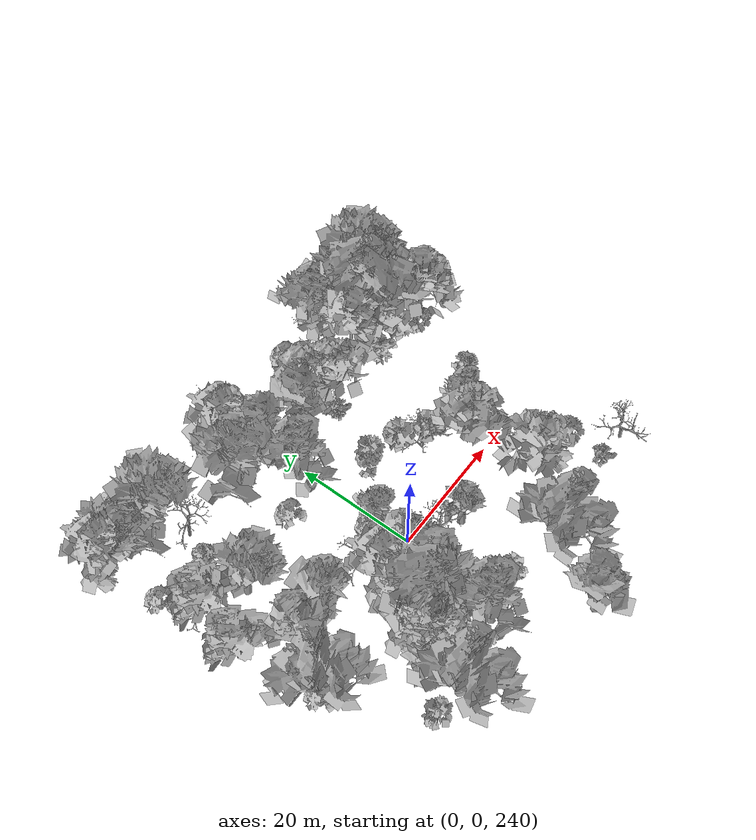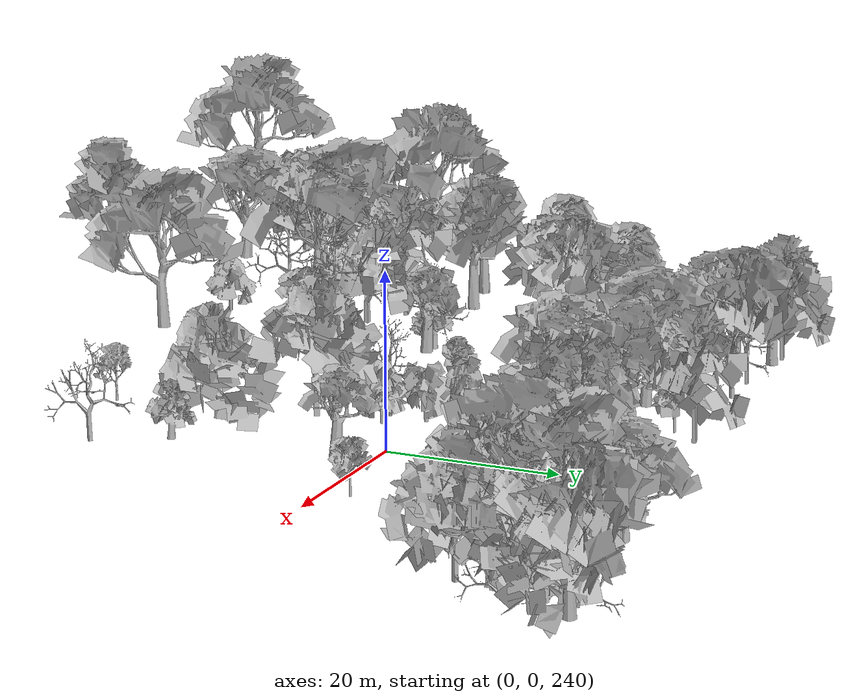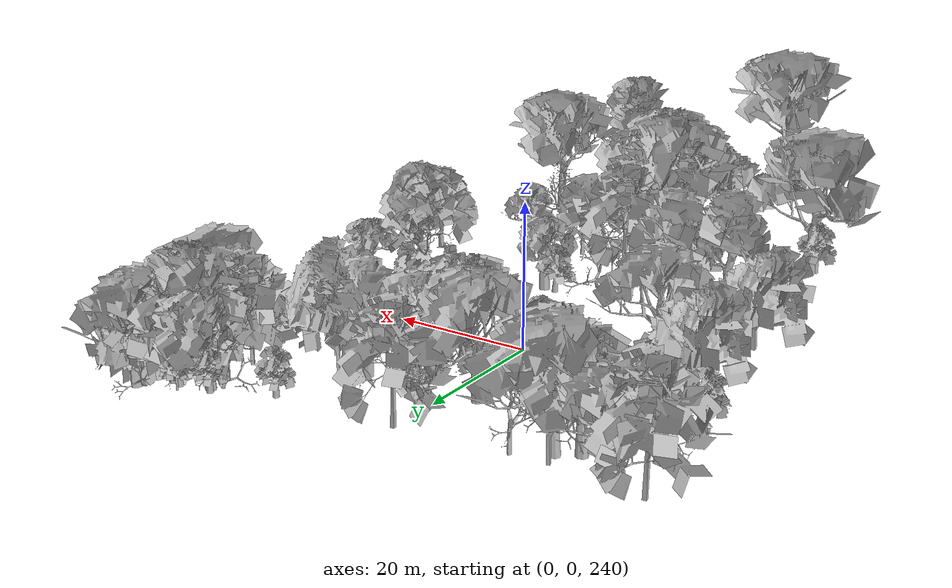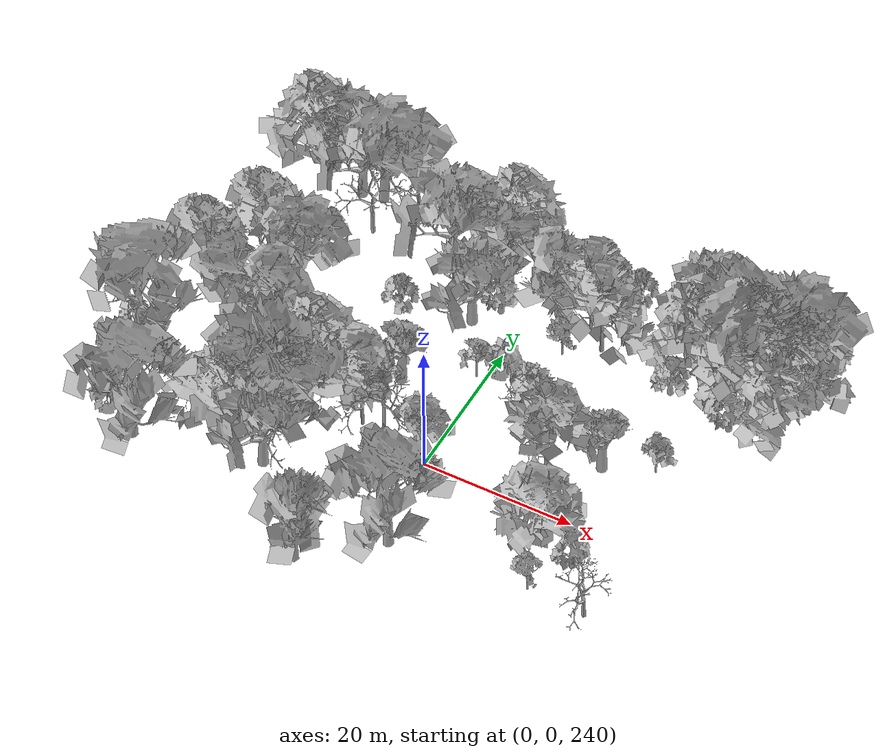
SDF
<sdf version="1.6">
 <world name="default">
  <light name="sun" type="directional">
   <pose>0 0 10 0 -0 0</pose>
   <diffuse>0.8 0.8 0.8 1</diffuse>
   <specular>0.2 0.2 0.2 1</specular>
   <attenuation>
    <range>1000</range>
    <constant>0.9</constant>
    <linear>0.01</linear>
    <quadratic>0.001</quadratic>
   </attenuation>
   <direction>-0.5 0.1 -0.9</direction>
  </light>
  <scene>
   <sky><clouds><speed>12</speed></clouds></sky>
   <ambient>0.4 0.4 0.4 1</ambient>
   <background>0.7 0.7 0.7 1</background>
   <shadows>1</shadows>
  </scene>
  <spherical_coordinates>
   <surface_model>EARTH_WGS84</surface_model>
   <latitude_deg>47.3977</latitude_deg>
   <longitude_deg>8.54559</longitude_deg>
   <elevation>0</elevation>
   <heading_deg>0</heading_deg>
  </spherical_coordinates>
  <physics name="default_physics" default="0" type="ode">
   <ode>
    <solver>
     <type>quick</type>
     <iters>100</iters>
     <sor>1.3</sor>
     <use_dynamic_moi_rescaling>0</use_dynamic_moi_rescaling>
    </solver>
    <constraints>
     <cfm>0</cfm>
     <erp>0.2</erp>
     <contact_max_correcting_vel>100</contact_max_correcting_vel>
     <contact_surface_layer>0.001</contact_surface_layer>
    </constraints>
   </ode>
   <max_step_size>0.002</max_step_size>
   <real_time_factor>1</real_time_factor>
   <real_time_update_rate>500</real_time_update_rate>
  </physics>
  <gravity>0 0 -9.8</gravity>
  <magnetic_field>6e-06 2.3e-05 -4.2e-05</magnetic_field>
  <atmosphere type="adiabatic"/>
  <model name="my_mesh0">
   <pose>28.4063 31.4954 240.777 0 -0 0.85452</pose>
   <static>1</static>
   <link name="body">
    <visual name="visual">
     <geometry><mesh><uri>model://trees/14.dae</uri><scale>1 1 1</scale></mesh></geometry>
    </visual>
    <collision name="collision">
     <geometry><mesh><uri>model://trees/14.dae</uri><scale>1 1 1</scale></mesh></geometry>
    </collision>
   </link>
  </model>
  <model name="my_mesh1">
   <pose>33.4438 31.0999 240.076 0 -0 0.182748</pose>
   <static>1</static>
   <link name="body">
    <visual name="visual">
     <geometry><mesh><uri>model://trees/16.dae</uri><scale>1 1 1</scale></mesh></geometry>
    </visual>
    <collision name="collision">
     <geometry><mesh><uri>model://trees/16.dae</uri><scale>1 1 1</scale></mesh></geometry>
    </collision>
   </link>
  </model>
  <model name="my_mesh2">
   <pose>27.3726 34.3492 240.263 0 -0 1.19378</pose>
   <static>1</static>
   <link name="body">
    <visual name="visual">
     <geometry><mesh><uri>model://trees/6.dae</uri><scale>1 1 1</scale></mesh></geometry>
    </visual>
    <collision name="collision">
     <geometry><mesh><uri>model://trees/6.dae</uri><scale>1 1 1</scale></mesh></geometry>
    </collision>
   </link>
  </model>
  <model name="my_mesh3">
   <pose>34.2484 33.8501 239.345 0 0 -1.26582</pose>
   <static>1</static>
   <link name="body">
    <visual name="visual">
     <geometry><mesh><uri>model://trees/15.dae</uri><scale>1 1 1</scale></mesh></geometry>
    </visual>
    <collision name="collision">
     <geometry><mesh><uri>model://trees/15.dae</uri><scale>1 1 1</scale></mesh></geometry>
    </collision>
   </link>
  </model>
  <model name="my_mesh4">
   <pose>34.6978 34.4709 238.994 0 0 -1.37986</pose>
   <static>1</static>
   <link name="body">
    <visual name="visual">
     <geometry><mesh><uri>model://trees/7.dae</uri><scale>1 1 1</scale></mesh></geometry>
    </visual>
    <collision name="collision">
     <geometry><mesh><uri>model://trees/7.dae</uri><scale>1 1 1</scale></mesh></geometry>
    </collision>
   </link>
  </model>
  <model name="my_mesh5">
   <pose>33.1142 34.6716 239.545 0 0 -0.380593</pose>
   <static>1</static>
   <link name="body">
    <visual name="visual">
     <geometry><mesh><uri>model://trees/18.dae</uri><scale>1 1 1</scale></mesh></geometry>
    </visual>
    <collision name="collision">
     <geometry><mesh><uri>model://trees/18.dae</uri><scale>1 1 1</scale></mesh></geometry>
    </collision>
   </link>
  </model>
  <model name="my_mesh6">
   <pose>33.6998 31.4376 239.796 0 0 -0.540894</pose>
   <static>1</static>
   <link name="body">
    <visual name="visual">
     <geometry><mesh><uri>model://trees/11.dae</uri><scale>1 1 1</scale></mesh></geometry>
    </visual>
    <collision name="collision">
     <geometry><mesh><uri>model://trees/11.dae</uri><scale>1 1 1</scale></mesh></geometry>
    </collision>
   </link>
  </model>
  <model name="my_mesh7">
   <pose>34.2173 34.1794 239.345 0 0 -1.09192</pose>
   <static>1</static>
   <link name="body">
    <visual name="visual">
     <geometry><mesh><uri>model://trees/2.dae</uri><scale>1 1 1</scale></mesh></geometry>
    </visual>
    <collision name="collision">
     <geometry><mesh><uri>model://trees/2.dae</uri><scale>1 1 1</scale></mesh></geometry>
    </collision>
   </link>
  </model>
  <model name="my_mesh8">
   <pose>29.8476 30.5218 240.854 0 0 -0.251351</pose>
   <static>1</static>
   <link name="body">
    <visual name="visual">
     <geometry><mesh><uri>model://trees/19.dae</uri><scale>1 1 1</scale></mesh></geometry>
    </visual>
    <collision name="collision">
     <geometry><mesh><uri>model://trees/19.dae</uri><scale>1 1 1</scale></mesh></geometry>
    </collision>
   </link>
  </model>
  <model name="my_mesh9">
   <pose>20.0603 33.6726 242.182 0 -0 1.56103</pose>
   <static>1</static>
   <link name="body">
    <visual name="visual">
     <geometry><mesh><uri>model://trees/18.dae</uri><scale>1 1 1</scale></mesh></geometry>
    </visual>
    <collision name="collision">
     <geometry><mesh><uri>model://trees/18.dae</uri><scale>1 1 1</scale></mesh></geometry>
    </collision>
   </link>
  </model>
  <model name="my_mesh10">
   <pose>34.2227 31.5013 239.796 0 -0 0.141431</pose>
   <static>1</static>
   <link name="body">
    <visual name="visual">
     <geometry><mesh><uri>model://trees/2.dae</uri><scale>1 1 1</scale></mesh></geometry>
    </visual>
    <collision name="collision">
     <geometry><mesh><uri>model://trees/2.dae</uri><scale>1 1 1</scale></mesh></geometry>
    </collision>
   </link>
  </model>
  <model name="my_mesh11">
   <pose>22.1633 21.7237 243.351 0 -0 0.78602</pose>
   <static>1</static>
   <link name="body">
    <visual name="visual">
     <geometry><mesh><uri>model://trees/1.dae</uri><scale>1 1 1</scale></mesh></geometry>
    </visual>
    <collision name="collision">
     <geometry><mesh><uri>model://trees/1.dae</uri><scale>1 1 1</scale></mesh></geometry>
    </collision>
   </link>
  </model>
  <model name="my_mesh12">
   <pose>31.0915 24.4947 241.553 0 -0 1.32994</pose>
   <static>1</static>
   <link name="body">
    <visual name="visual">
     <geometry><mesh><uri>model://trees/15.dae</uri><scale>1 1 1</scale></mesh></geometry>
    </visual>
    <collision name="collision">
     <geometry><mesh><uri>model://trees/15.dae</uri><scale>1 1 1</scale></mesh></geometry>
    </collision>
   </link>
  </model>
  <model name="my_mesh13">
   <pose>34.2431 26.3789 240.62 0 -0 0.91038</pose>
   <static>1</static>
   <link name="body">
    <visual name="visual">
     <geometry><mesh><uri>model://trees/16.dae</uri><scale>1 1 1</scale></mesh></geometry>
    </visual>
    <collision name="collision">
     <geometry><mesh><uri>model://trees/16.dae</uri><scale>1 1 1</scale></mesh></geometry>
    </collision>
   </link>
  </model>
  <model name="my_mesh14">
   <pose>33.8653 29.8797 240.076 0 -0 0.647622</pose>
   <static>1</static>
   <link name="body">
    <visual name="visual">
     <geometry><mesh><uri>model://trees/12.dae</uri><scale>1 1 1</scale></mesh></geometry>
    </visual>
    <collision name="collision">
     <geometry><mesh><uri>model://trees/12.dae</uri><scale>1 1 1</scale></mesh></geometry>
    </collision>
   </link>
  </model>
  <model name="my_mesh15">
   <pose>33.6249 31.3962 240.076 0 -0 1.23071</pose>
   <static>1</static>
   <link name="body">
    <visual name="visual">
     <geometry><mesh><uri>model://trees/5.dae</uri><scale>1 1 1</scale></mesh></geometry>
    </visual>
    <collision name="collision">
     <geometry><mesh><uri>model://trees/5.dae</uri><scale>1 1 1</scale></mesh></geometry>
    </collision>
   </link>
  </model>
  <model name="my_mesh16">
   <pose>32.7919 34.2264 239.792 0 0 -1.00451</pose>
   <static>1</static>
   <link name="body">
    <visual name="visual">
     <geometry><mesh><uri>model://trees/9.dae</uri><scale>1 1 1</scale></mesh></geometry>
    </visual>
    <collision name="collision">
     <geometry><mesh><uri>model://trees/9.dae</uri><scale>1 1 1</scale></mesh></geometry>
    </collision>
   </link>
  </model>
  <model name="my_mesh17">
   <pose>21.7544 34.0387 241.706 0 -0 0.278877</pose>
   <static>1</static>
   <link name="body">
    <visual name="visual">
     <geometry><mesh><uri>model://trees/8.dae</uri><scale>1 1 1</scale></mesh></geometry>
    </visual>
    <collision name="collision">
     <geometry><mesh><uri>model://trees/8.dae</uri><scale>1 1 1</scale></mesh></geometry>
    </collision>
   </link>
  </model>
  <model name="my_mesh18">
   <pose>29.2987 32.9867 240.511 0 0 -1.33424</pose>
   <static>1</static>
   <link name="body">
    <visual name="visual">
     <geometry><mesh><uri>model://trees/8.dae</uri><scale>1 1 1</scale></mesh></geometry>
    </visual>
    <collision name="collision">
     <geometry><mesh><uri>model://trees/8.dae</uri><scale>1 1 1</scale></mesh></geometry>
    </collision>
   </link>
  </model>
  <model name="my_mesh19">
   <pose>28.3888 31.9209 240.641 0 -0 1.41085</pose>
   <static>1</static>
   <link name="body">
    <visual name="visual">
     <geometry><mesh><uri>model://trees/11.dae</uri><scale>1 1 1</scale></mesh></geometry>
    </visual>
    <collision name="collision">
     <geometry><mesh><uri>model://trees/11.dae</uri><scale>1 1 1</scale></mesh></geometry>
    </collision>
   </link>
  </model>
  <model name="my_mesh20">
   <pose>21.016 34.8194 241.808 0 -0 0.154832</pose>
   <static>1</static>
   <link name="body">
    <visual name="visual">
     <geometry><mesh><uri>model://trees/1.dae</uri><scale>1 1 1</scale></mesh></geometry>
    </visual>
    <collision name="collision">
     <geometry><mesh><uri>model://trees/1.dae</uri><scale>1 1 1</scale></mesh></geometry>
    </collision>
   </link>
  </model>
  <model name="my_mesh21">
   <pose>21.7245 27.2855 242.484 0 0 -0.204462</pose>
   <static>1</static>
   <link name="body">
    <visual name="visual">
     <geometry><mesh><uri>model://trees/15.dae</uri><scale>1 1 1</scale></mesh></geometry>
    </visual>
    <collision name="collision">
     <geometry><mesh><uri>model://trees/15.dae</uri><scale>1 1 1</scale></mesh></geometry>
    </collision>
   </link>
  </model>
  <model name="my_mesh22">
   <pose>34.9501 33.7908 239.056 0 -0 1.01924</pose>
   <static>1</static>
   <link name="body">
    <visual name="visual">
     <geometry><mesh><uri>model://trees/13.dae</uri><scale>1 1 1</scale></mesh></geometry>
    </visual>
    <collision name="collision">
     <geometry><mesh><uri>model://trees/13.dae</uri><scale>1 1 1</scale></mesh></geometry>
    </collision>
   </link>
  </model>
  <model name="my_mesh23">
   <pose>32.4407 31.9594 240.085 0 -0 1.33412</pose>
   <static>1</static>
   <link name="body">
    <visual name="visual">
     <geometry><mesh><uri>model://trees/12.dae</uri><scale>1 1 1</scale></mesh></geometry>
    </visual>
    <collision name="collision">
     <geometry><mesh><uri>model://trees/12.dae</uri><scale>1 1 1</scale></mesh></geometry>
    </collision>
   </link>
  </model>
  <model name="my_mesh24">
   <pose>30.5975 20.7878 242.141 0 0 -1.47337</pose>
   <static>1</static>
   <link name="body">
    <visual name="visual">
     <geometry><mesh><uri>model://trees/0.dae</uri><scale>1 1 1</scale></mesh></geometry>
    </visual>
    <collision name="collision">
     <geometry><mesh><uri>model://trees/0.dae</uri><scale>1 1 1</scale></mesh></geometry>
    </collision>
   </link>
  </model>
  <model name="my_mesh25">
   <pose>26.8716 30.8943 240.81 0 -0 0.018159</pose>
   <static>1</static>
   <link name="body">
    <visual name="visual">
     <geometry><mesh><uri>model://trees/10.dae</uri><scale>1 1 1</scale></mesh></geometry>
    </visual>
    <collision name="collision">
     <geometry><mesh><uri>model://trees/10.dae</uri><scale>1 1 1</scale></mesh></geometry>
    </collision>
   </link>
  </model>
  <model name="my_mesh26">
   <pose>27.7847 33.4876 240.401 0 0 -0.929705</pose>
   <static>1</static>
   <link name="body">
    <visual name="visual">
     <geometry><mesh><uri>model://trees/1.dae</uri><scale>1 1 1</scale></mesh></geometry>
    </visual>
    <collision name="collision">
     <geometry><mesh><uri>model://trees/1.dae</uri><scale>1 1 1</scale></mesh></geometry>
    </collision>
   </link>
  </model>
  <model name="my_mesh27">
   <pose>31.2467 29.2039 240.887 0 0 -0.26303</pose>
   <static>1</static>
   <link name="body">
    <visual name="visual">
     <geometry><mesh><uri>model://trees/11.dae</uri><scale>1 1 1</scale></mesh></geometry>
    </visual>
    <collision name="collision">
     <geometry><mesh><uri>model://trees/11.dae</uri><scale>1 1 1</scale></mesh></geometry>
    </collision>
   </link>
  </model>
  <model name="my_mesh28">
   <pose>34.6202 23.2575 240.789 0 -0 0.287575</pose>
   <static>1</static>
   <link name="body">
    <visual name="visual">
     <geometry><mesh><uri>model://trees/15.dae</uri><scale>1 1 1</scale></mesh></geometry>
    </visual>
    <collision name="collision">
     <geometry><mesh><uri>model://trees/15.dae</uri><scale>1 1 1</scale></mesh></geometry>
    </collision>
   </link>
  </model>
  <model name="my_mesh29">
   <pose>33.7497 33.1949 239.421 0 0 -1.26001</pose>
   <static>1</static>
   <link name="body">
    <visual name="visual">
     <geometry><mesh><uri>model://trees/2.dae</uri><scale>1 1 1</scale></mesh></geometry>
    </visual>
    <collision name="collision">
     <geometry><mesh><uri>model://trees/2.dae</uri><scale>1 1 1</scale></mesh></geometry>
    </collision>
   </link>
  </model>
  <model name="my_mesh30">
   <pose>30.2527 29.3366 240.994 0 -0 1.34532</pose>
   <static>1</static>
   <link name="body">
    <visual name="visual">
     <geometry><mesh><uri>model://trees/15.dae</uri><scale>1 1 1</scale></mesh></geometry>
    </visual>
    <collision name="collision">
     <geometry><mesh><uri>model://trees/15.dae</uri><scale>1 1 1</scale></mesh></geometry>
    </collision>
   </link>
  </model>
  <model name="my_mesh31">
   <pose>27.9165 31.1298 240.754 0 -0 1.22861</pose>
   <static>1</static>
   <link name="body">
    <visual name="visual">
     <geometry><mesh><uri>model://trees/3.dae</uri><scale>1 1 1</scale></mesh></geometry>
    </visual>
    <collision name="collision">
     <geometry><mesh><uri>model://trees/3.dae</uri><scale>1 1 1</scale></mesh></geometry>
    </collision>
   </link>
  </model>
  <model name="my_mesh32">
   <pose>28.1479 26.4625 241.668 0 -0 1.51943</pose>
   <static>1</static>
   <link name="body">
    <visual name="visual">
     <geometry><mesh><uri>model://trees/10.dae</uri><scale>1 1 1</scale></mesh></geometry>
    </visual>
    <collision name="collision">
     <geometry><mesh><uri>model://trees/10.dae</uri><scale>1 1 1</scale></mesh></geometry>
    </collision>
   </link>
  </model>
  <model name="my_mesh33">
   <pose>2.14748 9.19942 248.202 0 0 -0.267345</pose>
   <static>1</static>
   <link name="body">
    <visual name="visual">
     <geometry><mesh><uri>model://trees/6.dae</uri><scale>1 1 1</scale></mesh></geometry>
    </visual>
    <collision name="collision">
     <geometry><mesh><uri>model://trees/6.dae</uri><scale>1 1 1</scale></mesh></geometry>
    </collision>
   </link>
  </model>
  <model name="my_mesh34">
   <pose>-11.1389 14.3292 248.001 0 -0 0.165701</pose>
   <static>1</static>
   <link name="body">
    <visual name="visual">
     <geometry><mesh><uri>model://trees/0.dae</uri><scale>1 1 1</scale></mesh></geometry>
    </visual>
    <collision name="collision">
     <geometry><mesh><uri>model://trees/0.dae</uri><scale>1 1 1</scale></mesh></geometry>
    </collision>
   </link>
  </model>
  <model name="my_mesh35">
   <pose>13.5023 5.95465 247.759 0 0 -1.11029</pose>
   <static>1</static>
   <link name="body">
    <visual name="visual">
     <geometry><mesh><uri>model://trees/5.dae</uri><scale>1 1 1</scale></mesh></geometry>
    </visual>
    <collision name="collision">
     <geometry><mesh><uri>model://trees/5.dae</uri><scale>1 1 1</scale></mesh></geometry>
    </collision>
   </link>
  </model>
  <model name="my_mesh36">
   <pose>-33.1716 6.80118 250.188 0 -0 0.808644</pose>
   <static>1</static>
   <link name="body">
    <visual name="visual">
     <geometry><mesh><uri>model://trees/13.dae</uri><scale>1 1 1</scale></mesh></geometry>
    </visual>
    <collision name="collision">
     <geometry><mesh><uri>model://trees/13.dae</uri><scale>1 1 1</scale></mesh></geometry>
    </collision>
   </link>
  </model>
  <model name="my_mesh37">
   <pose>-26.6062 18.4268 247.735 0 0 -0.08103</pose>
   <static>1</static>
   <link name="body">
    <visual name="visual">
     <geometry><mesh><uri>model://trees/5.dae</uri><scale>1 1 1</scale></mesh></geometry>
    </visual>
    <collision name="collision">
     <geometry><mesh><uri>model://trees/5.dae</uri><scale>1 1 1</scale></mesh></geometry>
    </collision>
   </link>
  </model>
  <model name="my_mesh38">
   <pose>-10.5501 -13.3833 253.808 0 -0 0.827635</pose>
   <static>1</static>
   <link name="body">
    <visual name="visual">
     <geometry><mesh><uri>model://trees/9.dae</uri><scale>1 1 1</scale></mesh></geometry>
    </visual>
    <collision name="collision">
     <geometry><mesh><uri>model://trees/9.dae</uri><scale>1 1 1</scale></mesh></geometry>
    </collision>
   </link>
  </model>
  <model name="my_mesh39">
   <pose>-21.0307 1.20442 250.999 0 0 -1.47679</pose>
   <static>1</static>
   <link name="body">
    <visual name="visual">
     <geometry><mesh><uri>model://trees/11.dae</uri><scale>1 1 1</scale></mesh></geometry>
    </visual>
    <collision name="collision">
     <geometry><mesh><uri>model://trees/11.dae</uri><scale>1 1 1</scale></mesh></geometry>
    </collision>
   </link>
  </model>
  <model name="my_mesh40">
   <pose>-25.6845 30.8136 245.774 0 0 -0.058622</pose>
   <static>1</static>
   <link name="body">
    <visual name="visual">
     <geometry><mesh><uri>model://trees/8.dae</uri><scale>1 1 1</scale></mesh></geometry>
    </visual>
    <collision name="collision">
     <geometry><mesh><uri>model://trees/8.dae</uri><scale>1 1 1</scale></mesh></geometry>
    </collision>
   </link>
  </model>
  <model name="my_mesh41">
   <pose>12.0357 22.9267 244.503 0 -0 1.52125</pose>
   <static>1</static>
   <link name="body">
    <visual name="visual">
     <geometry><mesh><uri>model://trees/15.dae</uri><scale>1 1 1</scale></mesh></geometry>
    </visual>
    <collision name="collision">
     <geometry><mesh><uri>model://trees/15.dae</uri><scale>1 1 1</scale></mesh></geometry>
    </collision>
   </link>
  </model>
  <model name="my_mesh42">
   <pose>-33.8153 33.9445 245.307 0 0 -0.663713</pose>
   <static>1</static>
   <link name="body">
    <visual name="visual">
     <geometry><mesh><uri>model://trees/15.dae</uri><scale>1 1 1</scale></mesh></geometry>
    </visual>
    <collision name="collision">
     <geometry><mesh><uri>model://trees/15.dae</uri><scale>1 1 1</scale></mesh></geometry>
    </collision>
   </link>
  </model>
  <model name="my_mesh43">
   <pose>-6.2379 2.89268 250.239 0 -0 0.347638</pose>
   <static>1</static>
   <link name="body">
    <visual name="visual">
     <geometry><mesh><uri>model://trees/1.dae</uri><scale>1 1 1</scale></mesh></geometry>
    </visual>
    <collision name="collision">
     <geometry><mesh><uri>model://trees/1.dae</uri><scale>1 1 1</scale></mesh></geometry>
    </collision>
   </link>
  </model>
  <model name="my_mesh44">
   <pose>16.5476 0.121368 248.723 0 0 -0.242676</pose>
   <static>1</static>
   <link name="body">
    <visual name="visual">
     <geometry><mesh><uri>model://trees/14.dae</uri><scale>1 1 1</scale></mesh></geometry>
    </visual>
    <collision name="collision">
     <geometry><mesh><uri>model://trees/14.dae</uri><scale>1 1 1</scale></mesh></geometry>
    </collision>
   </link>
  </model>
  <model name="my_mesh45">
   <pose>9.03762 25.9351 244.235 0 -0 1.43379</pose>
   <static>1</static>
   <link name="body">
    <visual name="visual">
     <geometry><mesh><uri>model://trees/15.dae</uri><scale>1 1 1</scale></mesh></geometry>
    </visual>
    <collision name="collision">
     <geometry><mesh><uri>model://trees/15.dae</uri><scale>1 1 1</scale></mesh></geometry>
    </collision>
   </link>
  </model>
  <model name="my_mesh46">
   <pose>-2.83377 26.7954 244.598 0 0 -0.464357</pose>
   <static>1</static>
   <link name="body">
    <visual name="visual">
     <geometry><mesh><uri>model://trees/11.dae</uri><scale>1 1 1</scale></mesh></geometry>
    </visual>
    <collision name="collision">
     <geometry><mesh><uri>model://trees/11.dae</uri><scale>1 1 1</scale></mesh></geometry>
    </collision>
   </link>
  </model>
  <model name="my_mesh47">
   <pose>-21.3435 25.7196 245.878 0 0 -0.981016</pose>
   <static>1</static>
   <link name="body">
    <visual name="visual">
     <geometry><mesh><uri>model://trees/16.dae</uri><scale>1 1 1</scale></mesh></geometry>
    </visual>
    <collision name="collision">
     <geometry><mesh><uri>model://trees/16.dae</uri><scale>1 1 1</scale></mesh></geometry>
    </collision>
   </link>
  </model>
  <model name="my_mesh48">
   <pose>-31.4001 15.5914 248.447 0 -0 0.734686</pose>
   <static>1</static>
   <link name="body">
    <visual name="visual">
     <geometry><mesh><uri>model://trees/19.dae</uri><scale>1 1 1</scale></mesh></geometry>
    </visual>
    <collision name="collision">
     <geometry><mesh><uri>model://trees/19.dae</uri><scale>1 1 1</scale></mesh></geometry>
    </collision>
   </link>
  </model>
  <model name="my_mesh49">
   <pose>12.1011 33.1217 242.923 0 -0 0.136228</pose>
   <static>1</static>
   <link name="body">
    <visual name="visual">
     <geometry><mesh><uri>model://trees/1.dae</uri><scale>1 1 1</scale></mesh></geometry>
    </visual>
    <collision name="collision">
     <geometry><mesh><uri>model://trees/1.dae</uri><scale>1 1 1</scale></mesh></geometry>
    </collision>
   </link>
  </model>
  <model name="my_mesh50">
   <pose>-30.1493 16.0569 248.236 0 -0 1.01185</pose>
   <static>1</static>
   <link name="body">
    <visual name="visual">
     <geometry><mesh><uri>model://trees/13.dae</uri><scale>1 1 1</scale></mesh></geometry>
    </visual>
    <collision name="collision">
     <geometry><mesh><uri>model://trees/13.dae</uri><scale>1 1 1</scale></mesh></geometry>
    </collision>
   </link>
  </model>
  <model name="my_mesh51">
   <pose>-31.0323 33.5886 245.456 0 0 -1.55465</pose>
   <static>1</static>
   <link name="body">
    <visual name="visual">
     <geometry><mesh><uri>model://trees/8.dae</uri><scale>1 1 1</scale></mesh></geometry>
    </visual>
    <collision name="collision">
     <geometry><mesh><uri>model://trees/8.dae</uri><scale>1 1 1</scale></mesh></geometry>
    </collision>
   </link>
  </model>
  <model name="my_mesh52">
   <pose>-18.1971 -18.4995 256.614 0 0 -1.54509</pose>
   <static>1</static>
   <link name="body">
    <visual name="visual">
     <geometry><mesh><uri>model://trees/13.dae</uri><scale>1 1 1</scale></mesh></geometry>
    </visual>
    <collision name="collision">
     <geometry><mesh><uri>model://trees/13.dae</uri><scale>1 1 1</scale></mesh></geometry>
    </collision>
   </link>
  </model>
  <model name="my_mesh53">
   <pose>-27.3611 -0.126 251.284 0 -0 1.19626</pose>
   <static>1</static>
   <link name="body">
    <visual name="visual">
     <geometry><mesh><uri>model://trees/11.dae</uri><scale>1 1 1</scale></mesh></geometry>
    </visual>
    <collision name="collision">
     <geometry><mesh><uri>model://trees/11.dae</uri><scale>1 1 1</scale></mesh></geometry>
    </collision>
   </link>
  </model>
  <model name="my_mesh54">
   <pose>-1.73437 -6.85038 251.897 0 -0 1.32214</pose>
   <static>1</static>
   <link name="body">
    <visual name="visual">
     <geometry><mesh><uri>model://trees/16.dae</uri><scale>1 1 1</scale></mesh></geometry>
    </visual>
    <collision name="collision">
     <geometry><mesh><uri>model://trees/16.dae</uri><scale>1 1 1</scale></mesh></geometry>
    </collision>
   </link>
  </model>
  <model name="my_mesh55">
   <pose>21.6057 4.74347 246.376 0 -0 0.425033</pose>
   <static>1</static>
   <link name="body">
    <visual name="visual">
     <geometry><mesh><uri>model://trees/7.dae</uri><scale>1 1 1</scale></mesh></geometry>
    </visual>
    <collision name="collision">
     <geometry><mesh><uri>model://trees/7.dae</uri><scale>1 1 1</scale></mesh></geometry>
    </collision>
   </link>
  </model>
  <model name="my_mesh56">
   <pose>-23.0745 31.572 245.397 0 0 -0.76755</pose>
   <static>1</static>
   <link name="body">
    <visual name="visual">
     <geometry><mesh><uri>model://trees/9.dae</uri><scale>1 1 1</scale></mesh></geometry>
    </visual>
    <collision name="collision">
     <geometry><mesh><uri>model://trees/9.dae</uri><scale>1 1 1</scale></mesh></geometry>
    </collision>
   </link>
  </model>
  <model name="my_mesh57">
   <pose>-4.68579 33.1345 243.847 0 0 -0.726556</pose>
   <static>1</static>
   <link name="body">
    <visual name="visual">
     <geometry><mesh><uri>model://trees/15.dae</uri><scale>1 1 1</scale></mesh></geometry>
    </visual>
    <collision name="collision">
     <geometry><mesh><uri>model://trees/15.dae</uri><scale>1 1 1</scale></mesh></geometry>
    </collision>
   </link>
  </model>
  <model name="my_mesh58">
   <pose>-24.5 12.005 249.141 0 0 -1.27851</pose>
   <static>1</static>
   <link name="body">
    <visual name="visual">
     <geometry><mesh><uri>model://trees/8.dae</uri><scale>1 1 1</scale></mesh></geometry>
    </visual>
    <collision name="collision">
     <geometry><mesh><uri>model://trees/8.dae</uri><scale>1 1 1</scale></mesh></geometry>
    </collision>
   </link>
  </model>
  <model name="my_mesh59">
   <pose>-4.52609 -6.97949 252.146 0 0 -0.008645</pose>
   <static>1</static>
   <link name="body">
    <visual name="visual">
     <geometry><mesh><uri>model://trees/17.dae</uri><scale>1 1 1</scale></mesh></geometry>
    </visual>
    <collision name="collision">
     <geometry><mesh><uri>model://trees/17.dae</uri><scale>1 1 1</scale></mesh></geometry>
    </collision>
   </link>
  </model>
  <model name="my_mesh60">
   <pose>27.8222 22.5097 242.201 0 -0 0.444687</pose>
   <static>1</static>
   <link name="body">
    <visual name="visual">
     <geometry><mesh><uri>model://trees/5.dae</uri><scale>1 1 1</scale></mesh></geometry>
    </visual>
    <collision name="collision">
     <geometry><mesh><uri>model://trees/5.dae</uri><scale>1 1 1</scale></mesh></geometry>
    </collision>
   </link>
  </model>
  <model name="my_mesh61">
   <pose>-33.879 21.2807 247.333 0 0 -0.258704</pose>
   <static>1</static>
   <link name="body">
    <visual name="visual">
     <geometry><mesh><uri>model://trees/0.dae</uri><scale>1 1 1</scale></mesh></geometry>
    </visual>
    <collision name="collision">
     <geometry><mesh><uri>model://trees/0.dae</uri><scale>1 1 1</scale></mesh></geometry>
    </collision>
   </link>
  </model>
  <model name="my_mesh62">
   <pose>-23.3073 33.0005 245.163 0 -0 1.00053</pose>
   <static>1</static>
   <link name="body">
    <visual name="visual">
     <geometry><mesh><uri>model://trees/17.dae</uri><scale>1 1 1</scale></mesh></geometry>
    </visual>
    <collision name="collision">
     <geometry><mesh><uri>model://trees/17.dae</uri><scale>1 1 1</scale></mesh></geometry>
    </collision>
   </link>
  </model>
  <model name="my_mesh63">
   <pose>-33.8727 -8.99096 254.634 0 -0 0.891456</pose>
   <static>1</static>
   <link name="body">
    <visual name="visual">
     <geometry><mesh><uri>model://trees/10.dae</uri><scale>1 1 1</scale></mesh></geometry>
    </visual>
    <collision name="collision">
     <geometry><mesh><uri>model://trees/10.dae</uri><scale>1 1 1</scale></mesh></geometry>
    </collision>
   </link>
  </model>
  <model name="my_mesh64">
   <pose>23.9684 -18.6405 250.087 0 -0 0.989653</pose>
   <static>1</static>
   <link name="body">
    <visual name="visual">
     <geometry><mesh><uri>model://trees/3.dae</uri><scale>1 1 1</scale></mesh></geometry>
    </visual>
    <collision name="collision">
     <geometry><mesh><uri>model://trees/3.dae</uri><scale>1 1 1</scale></mesh></geometry>
    </collision>
   </link>
  </model>
  <model name="my_mesh65">
   <pose>-12.4056 -3.29654 251.851 0 0 -0.65909</pose>
   <static>1</static>
   <link name="body">
    <visual name="visual">
     <geometry><mesh><uri>model://trees/15.dae</uri><scale>1 1 1</scale></mesh></geometry>
    </visual>
    <collision name="collision">
     <geometry><mesh><uri>model://trees/15.dae</uri><scale>1 1 1</scale></mesh></geometry>
    </collision>
   </link>
  </model>
  <model name="my_mesh66">
   <pose>-23.8211 -27.6764 260.709 0 -0 0.39387</pose>
   <static>1</static>
   <link name="body">
    <visual name="visual">
     <geometry><mesh><uri>model://trees/10.dae</uri><scale>1 1 1</scale></mesh></geometry>
    </visual>
    <collision name="collision">
     <geometry><mesh><uri>model://trees/10.dae</uri><scale>1 1 1</scale></mesh></geometry>
    </collision>
   </link>
  </model>
  <model name="my_mesh67">
   <pose>-28.0622 -25.3475 260.176 0 0 -0.222888</pose>
   <static>1</static>
   <link name="body">
    <visual name="visual">
     <geometry><mesh><uri>model://trees/4.dae</uri><scale>1 1 1</scale></mesh></geometry>
    </visual>
    <collision name="collision">
     <geometry><mesh><uri>model://trees/4.dae</uri><scale>1 1 1</scale></mesh></geometry>
    </collision>
   </link>
  </model>
  <model name="my_mesh68">
   <pose>-24.6103 20.4013 247.172 0 -0 1.17873</pose>
   <static>1</static>
   <link name="body">
    <visual name="visual">
     <geometry><mesh><uri>model://trees/2.dae</uri><scale>1 1 1</scale></mesh></geometry>
    </visual>
    <collision name="collision">
     <geometry><mesh><uri>model://trees/2.dae</uri><scale>1 1 1</scale></mesh></geometry>
    </collision>
   </link>
  </model>
  <model name="my_mesh69">
   <pose>-7.35172 -5.67327 251.982 0 0 -0.862382</pose>
   <static>1</static>
   <link name="body">
    <visual name="visual">
     <geometry><mesh><uri>model://trees/13.dae</uri><scale>1 1 1</scale></mesh></geometry>
    </visual>
    <collision name="collision">
     <geometry><mesh><uri>model://trees/13.dae</uri><scale>1 1 1</scale></mesh></geometry>
    </collision>
   </link>
  </model>
  <model name="my_mesh70">
   <pose>-8.91835 23.7109 245.706 0 0 -0.327236</pose>
   <static>1</static>
   <link name="body">
    <visual name="visual">
     <geometry><mesh><uri>model://trees/6.dae</uri><scale>1 1 1</scale></mesh></geometry>
    </visual>
    <collision name="collision">
     <geometry><mesh><uri>model://trees/6.dae</uri><scale>1 1 1</scale></mesh></geometry>
    </collision>
   </link>
  </model>
  <model name="my_mesh71">
   <pose>-12.0025 -17.626 255.531 0 -0 1.13419</pose>
   <static>1</static>
   <link name="body">
    <visual name="visual">
     <geometry><mesh><uri>model://trees/19.dae</uri><scale>1 1 1</scale></mesh></geometry>
    </visual>
    <collision name="collision">
     <geometry><mesh><uri>model://trees/19.dae</uri><scale>1 1 1</scale></mesh></geometry>
    </collision>
   </link>
  </model>
  <model name="my_mesh72">
   <pose>3.32064 -7.30362 251.131 0 0 -1.34582</pose>
   <static>1</static>
   <link name="body">
    <visual name="visual">
     <geometry><mesh><uri>model://trees/7.dae</uri><scale>1 1 1</scale></mesh></geometry>
    </visual>
    <collision name="collision">
     <geometry><mesh><uri>model://trees/7.dae</uri><scale>1 1 1</scale></mesh></geometry>
    </collision>
   </link>
  </model>
  <model name="my_mesh73">
   <pose>-9.59423 -21.7901 257.359 0 -0 0.292829</pose>
   <static>1</static>
   <link name="body">
    <visual name="visual">
     <geometry><mesh><uri>model://trees/8.dae</uri><scale>1 1 1</scale></mesh></geometry>
    </visual>
    <collision name="collision">
     <geometry><mesh><uri>model://trees/8.dae</uri><scale>1 1 1</scale></mesh></geometry>
    </collision>
   </link>
  </model>
  <model name="my_mesh74">
   <pose>22.7331 30.729 241.801 0 -0 0.230834</pose>
   <static>1</static>
   <link name="body">
    <visual name="visual">
     <geometry><mesh><uri>model://trees/13.dae</uri><scale>1 1 1</scale></mesh></geometry>
    </visual>
    <collision name="collision">
     <geometry><mesh><uri>model://trees/13.dae</uri><scale>1 1 1</scale></mesh></geometry>
    </collision>
   </link>
  </model>
  <model name="my_mesh75">
   <pose>-14.5642 -11.6947 253.682 0 0 -0.282107</pose>
   <static>1</static>
   <link name="body">
    <visual name="visual">
     <geometry><mesh><uri>model://trees/10.dae</uri><scale>1 1 1</scale></mesh></geometry>
    </visual>
    <collision name="collision">
     <geometry><mesh><uri>model://trees/10.dae</uri><scale>1 1 1</scale></mesh></geometry>
    </collision>
   </link>
  </model>
  <model name="my_mesh76">
   <pose>-18.7369 32.7436 244.762 0 -0 0.06697</pose>
   <static>1</static>
   <link name="body">
    <visual name="visual">
     <geometry><mesh><uri>model://trees/17.dae</uri><scale>1 1 1</scale></mesh></geometry>
    </visual>
    <collision name="collision">
     <geometry><mesh><uri>model://trees/17.dae</uri><scale>1 1 1</scale></mesh></geometry>
    </collision>
   </link>
  </model>
  <model name="my_mesh77">
   <pose>26.0575 -11.2479 247.589 0 0 -1.04511</pose>
   <static>1</static>
   <link name="body">
    <visual name="visual">
     <geometry><mesh><uri>model://trees/0.dae</uri><scale>1 1 1</scale></mesh></geometry>
    </visual>
    <collision name="collision">
     <geometry><mesh><uri>model://trees/0.dae</uri><scale>1 1 1</scale></mesh></geometry>
    </collision>
   </link>
  </model>
  <model name="my_mesh78">
   <pose>8.35617 19.6389 245.172 0 -0 1.34125</pose>
   <static>1</static>
   <link name="body">
    <visual name="visual">
     <geometry><mesh><uri>model://trees/3.dae</uri><scale>1 1 1</scale></mesh></geometry>
    </visual>
    <collision name="collision">
     <geometry><mesh><uri>model://trees/3.dae</uri><scale>1 1 1</scale></mesh></geometry>
    </collision>
   </link>
  </model>
  <model name="my_mesh79">
   <pose>-34.3239 -9.1105 254.634 0 0 -0.401437</pose>
   <static>1</static>
   <link name="body">
    <visual name="visual">
     <geometry><mesh><uri>model://trees/1.dae</uri><scale>1 1 1</scale></mesh></geometry>
    </visual>
    <collision name="collision">
     <geometry><mesh><uri>model://trees/1.dae</uri><scale>1 1 1</scale></mesh></geometry>
    </collision>
   </link>
  </model>
  <model name="my_mesh80">
   <pose>-4.63226 2.71397 250.244 0 0 -0.143311</pose>
   <static>1</static>
   <link name="body">
    <visual name="visual">
     <geometry><mesh><uri>model://trees/7.dae</uri><scale>1 1 1</scale></mesh></geometry>
    </visual>
    <collision name="collision">
     <geometry><mesh><uri>model://trees/7.dae</uri><scale>1 1 1</scale></mesh></geometry>
    </collision>
   </link>
  </model>
  <model name="my_mesh81">
   <pose>-5.64124 30.6444 244.364 0 0 -0.492828</pose>
   <static>1</static>
   <link name="body">
    <visual name="visual">
     <geometry><mesh><uri>model://trees/2.dae</uri><scale>1 1 1</scale></mesh></geometry>
    </visual>
    <collision name="collision">
     <geometry><mesh><uri>model://trees/2.dae</uri><scale>1 1 1</scale></mesh></geometry>
    </collision>
   </link>
  </model>
  <model name="my_mesh82">
   <pose>26.817 8.82073 244.53 0 0 -1.41061</pose>
   <static>1</static>
   <link name="body">
    <visual name="visual">
     <geometry><mesh><uri>model://trees/6.dae</uri><scale>1 1 1</scale></mesh></geometry>
    </visual>
    <collision name="collision">
     <geometry><mesh><uri>model://trees/6.dae</uri><scale>1 1 1</scale></mesh></geometry>
    </collision>
   </link>
  </model>
  <model name="my_mesh83">
   <pose>0.825134 -32.9894 257.728 0 -0 0.14021</pose>
   <static>1</static>
   <link name="body">
    <visual name="visual">
     <geometry><mesh><uri>model://trees/11.dae</uri><scale>1 1 1</scale></mesh></geometry>
    </visual>
    <collision name="collision">
     <geometry><mesh><uri>model://trees/11.dae</uri><scale>1 1 1</scale></mesh></geometry>
    </collision>
   </link>
  </model>
  <model name="my_mesh84">
   <pose>11.3628 5.83393 247.944 0 -0 0.847961</pose>
   <static>1</static>
   <link name="body">
    <visual name="visual">
     <geometry><mesh><uri>model://trees/17.dae</uri><scale>1 1 1</scale></mesh></geometry>
    </visual>
    <collision name="collision">
     <geometry><mesh><uri>model://trees/17.dae</uri><scale>1 1 1</scale></mesh></geometry>
    </collision>
   </link>
  </model>
  <model name="my_mesh85">
   <pose>4.92653 11.2464 247.303 0 0 -0.380034</pose>
   <static>1</static>
   <link name="body">
    <visual name="visual">
     <geometry><mesh><uri>model://trees/4.dae</uri><scale>1 1 1</scale></mesh></geometry>
    </visual>
    <collision name="collision">
     <geometry><mesh><uri>model://trees/4.dae</uri><scale>1 1 1</scale></mesh></geometry>
    </collision>
   </link>
  </model>
  <model name="my_mesh86">
   <pose>-17.1832 -11.6928 253.787 0 0 -0.89403</pose>
   <static>1</static>
   <link name="body">
    <visual name="visual">
     <geometry><mesh><uri>model://trees/15.dae</uri><scale>1 1 1</scale></mesh></geometry>
    </visual>
    <collision name="collision">
     <geometry><mesh><uri>model://trees/15.dae</uri><scale>1 1 1</scale></mesh></geometry>
    </collision>
   </link>
  </model>
  <model name="my_mesh87">
   <pose>-1.59057 22.392 244.895 0 0 -1.52913</pose>
   <static>1</static>
   <link name="body">
    <visual name="visual">
     <geometry><mesh><uri>model://trees/0.dae</uri><scale>1 1 1</scale></mesh></geometry>
    </visual>
    <collision name="collision">
     <geometry><mesh><uri>model://trees/0.dae</uri><scale>1 1 1</scale></mesh></geometry>
    </collision>
   </link>
  </model>
  <model name="my_mesh88">
   <pose>-10.9587 0.795825 251.112 0 0 -1.193</pose>
   <static>1</static>
   <link name="body">
    <visual name="visual">
     <geometry><mesh><uri>model://trees/19.dae</uri><scale>1 1 1</scale></mesh></geometry>
    </visual>
    <collision name="collision">
     <geometry><mesh><uri>model://trees/19.dae</uri><scale>1 1 1</scale></mesh></geometry>
    </collision>
   </link>
  </model>
  <model name="my_mesh89">
   <pose>-10.284 25.7923 245.412 0 0 -0.19696</pose>
   <static>1</static>
   <link name="body">
    <visual name="visual">
     <geometry><mesh><uri>model://trees/9.dae</uri><scale>1 1 1</scale></mesh></geometry>
    </visual>
    <collision name="collision">
     <geometry><mesh><uri>model://trees/9.dae</uri><scale>1 1 1</scale></mesh></geometry>
    </collision>
   </link>
  </model>
  <model name="my_mesh90">
   <pose>-16.8005 -15.7629 255.111 0 -0 1.13443</pose>
   <static>1</static>
   <link name="body">
    <visual name="visual">
     <geometry><mesh><uri>model://trees/11.dae</uri><scale>1 1 1</scale></mesh></geometry>
    </visual>
    <collision name="collision">
     <geometry><mesh><uri>model://trees/11.dae</uri><scale>1 1 1</scale></mesh></geometry>
    </collision>
   </link>
  </model>
  <model name="my_mesh91">
   <pose>-3.39901 18.3046 246.114 0 -0 0.483088</pose>
   <static>1</static>
   <link name="body">
    <visual name="visual">
     <geometry><mesh><uri>model://trees/8.dae</uri><scale>1 1 1</scale></mesh></geometry>
    </visual>
    <collision name="collision">
     <geometry><mesh><uri>model://trees/8.dae</uri><scale>1 1 1</scale></mesh></geometry>
    </collision>
   </link>
  </model>
  <model name="my_mesh92">
   <pose>34.5738 27.9917 240.129 0 -0 0.151844</pose>
   <static>1</static>
   <link name="body">
    <visual name="visual">
     <geometry><mesh><uri>model://trees/19.dae</uri><scale>1 1 1</scale></mesh></geometry>
    </visual>
    <collision name="collision">
     <geometry><mesh><uri>model://trees/19.dae</uri><scale>1 1 1</scale></mesh></geometry>
    </collision>
   </link>
  </model>
  <model name="my_mesh93">
   <pose>-0.621598 -18.9916 253.576 0 -0 1.40477</pose>
   <static>1</static>
   <link name="body">
    <visual name="visual">
     <geometry><mesh><uri>model://trees/4.dae</uri><scale>1 1 1</scale></mesh></geometry>
    </visual>
    <collision name="collision">
     <geometry><mesh><uri>model://trees/4.dae</uri><scale>1 1 1</scale></mesh></geometry>
    </collision>
   </link>
  </model>
  <model name="my_mesh94">
   <pose>4.9869 25.5071 244.47 0 0 -0.762046</pose>
   <static>1</static>
   <link name="body">
    <visual name="visual">
     <geometry><mesh><uri>model://trees/11.dae</uri><scale>1 1 1</scale></mesh></geometry>
    </visual>
    <collision name="collision">
     <geometry><mesh><uri>model://trees/11.dae</uri><scale>1 1 1</scale></mesh></geometry>
    </collision>
   </link>
  </model>
  <model name="my_mesh95">
   <pose>19.9889 -9.30983 248.273 0 0 -0.941764</pose>
   <static>1</static>
   <link name="body">
    <visual name="visual">
     <geometry><mesh><uri>model://trees/12.dae</uri><scale>1 1 1</scale></mesh></geometry>
    </visual>
    <collision name="collision">
     <geometry><mesh><uri>model://trees/12.dae</uri><scale>1 1 1</scale></mesh></geometry>
    </collision>
   </link>
  </model>
  <model name="my_mesh96">
   <pose>30.929 -17.593 247.987 0 -0 0.182111</pose>
   <static>1</static>
   <link name="body">
    <visual name="visual">
     <geometry><mesh><uri>model://trees/17.dae</uri><scale>1 1 1</scale></mesh></geometry>
    </visual>
    <collision name="collision">
     <geometry><mesh><uri>model://trees/17.dae</uri><scale>1 1 1</scale></mesh></geometry>
    </collision>
   </link>
  </model>
  <model name="my_mesh97">
   <pose>7.59944 -22.5929 253.352 0 -0 0.128689</pose>
   <static>1</static>
   <link name="body">
    <visual name="visual">
     <geometry><mesh><uri>model://trees/10.dae</uri><scale>1 1 1</scale></mesh></geometry>
    </visual>
    <collision name="collision">
     <geometry><mesh><uri>model://trees/10.dae</uri><scale>1 1 1</scale></mesh></geometry>
    </collision>
   </link>
  </model>
  <model name="my_mesh98">
   <pose>9.85127 9.20027 247.277 0 -0 0.354331</pose>
   <static>1</static>
   <link name="body">
    <visual name="visual">
     <geometry><mesh><uri>model://trees/5.dae</uri><scale>1 1 1</scale></mesh></geometry>
    </visual>
    <collision name="collision">
     <geometry><mesh><uri>model://trees/5.dae</uri><scale>1 1 1</scale></mesh></geometry>
    </collision>
   </link>
  </model>
 </world>
</sdf>
